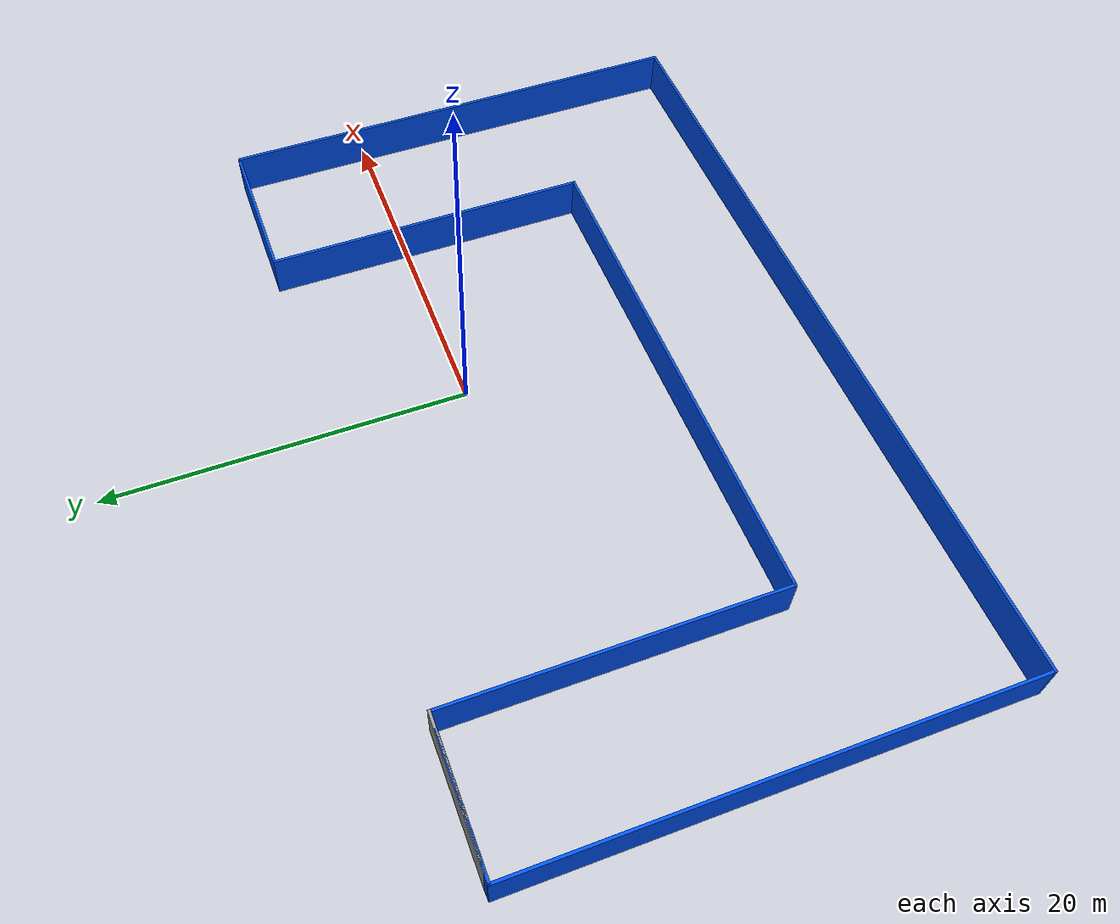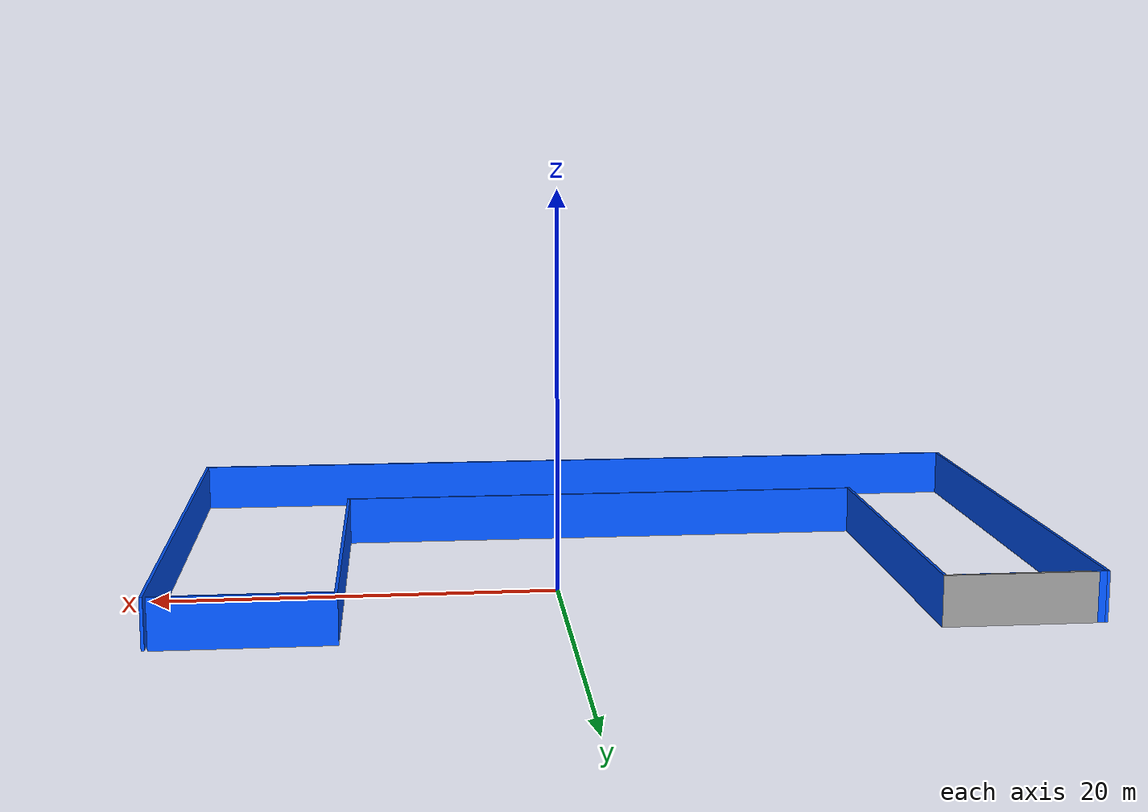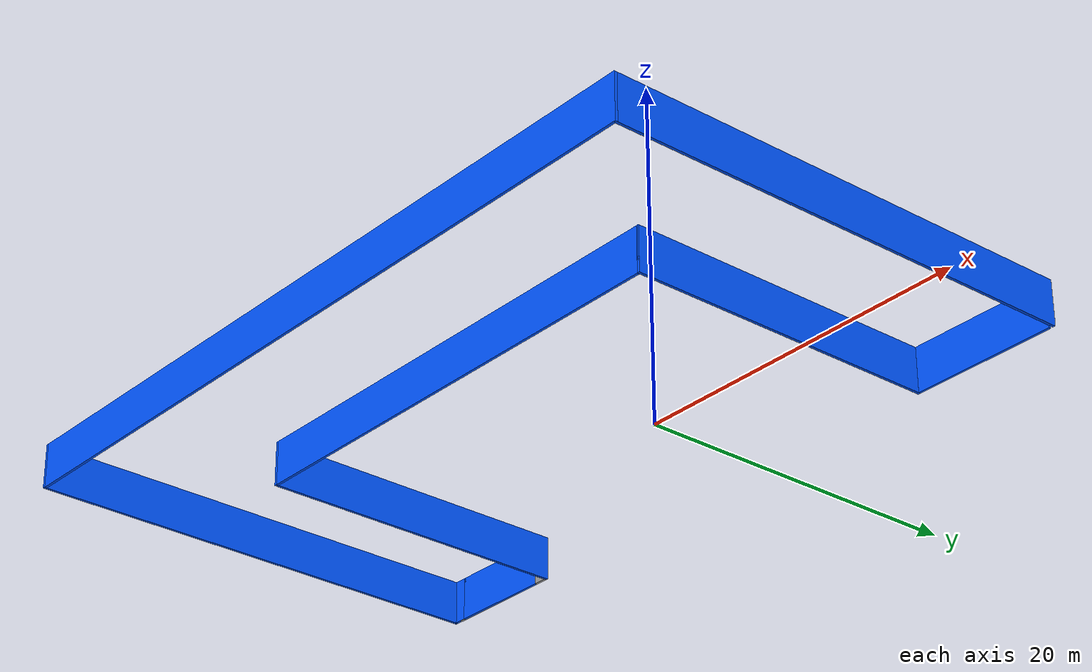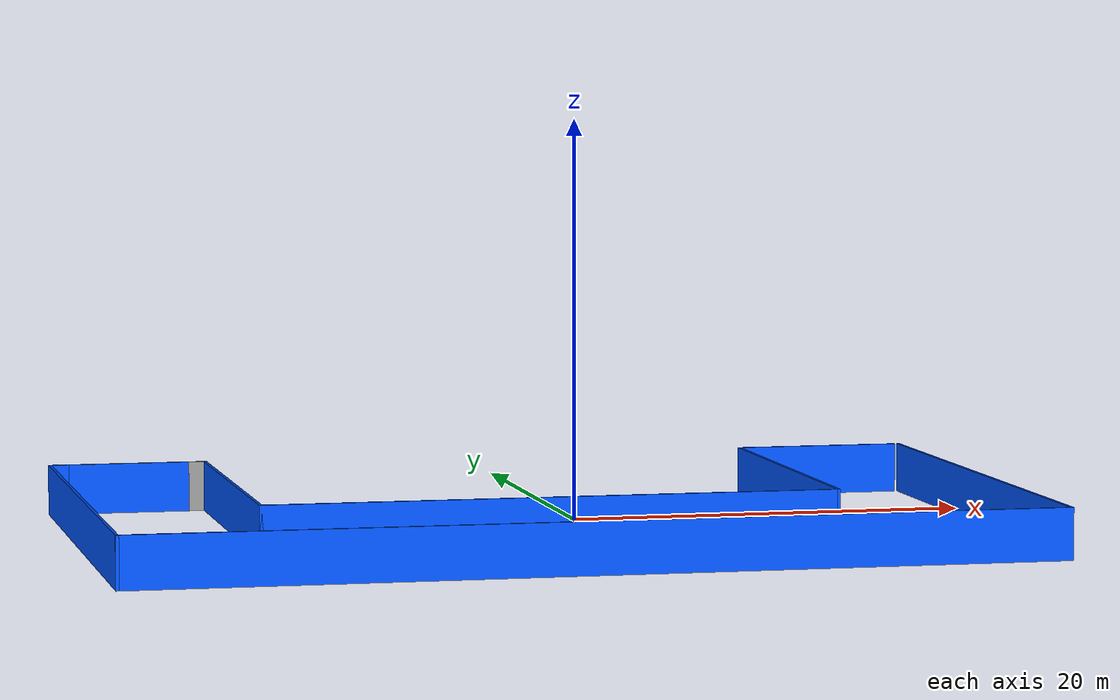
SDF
<?xml version='1.0'?>
<sdf version='1.6'>
  <model name='MyModel_1'>
    <pose frame=''>-3.0198 -5.90087 0 0 -0 0</pose>
    <link name='Wall_10'>
      <collision name='Wall_10_Collision'>
        <geometry>
          <box>
            <size>18.25 0.15 2.5</size>
          </box>
        </geometry>
        <pose frame=''>0 0 1.25 0 -0 0</pose>
      </collision>
      <visual name='Wall_10_Visual'>
        <pose frame=''>0 0 1.25 0 -0 0</pose>
        <geometry>
          <box>
            <size>18.25 0.15 2.5</size>
          </box>
        </geometry>
        <material>
          <script>
            <uri>file://media/materials/scripts/gazebo.material</uri>
            <name>Gazebo/Grey</name>
          </script>
          <ambient>0 0.333333 1 1</ambient>
        </material>
        <meta>
          <layer>0</layer>
        </meta>
      </visual>
      <pose frame=''>13.6677 4.50599 0 0 -0 1.5708</pose>
    </link>
    <link name='Wall_11'>
      <collision name='Wall_11_Collision'>
        <geometry>
          <box>
            <size>8.5 0.15 2.5</size>
          </box>
        </geometry>
        <pose frame=''>0 0 1.25 0 -0 0</pose>
      </collision>
      <visual name='Wall_11_Visual'>
        <pose frame=''>0 0 1.25 0 -0 0</pose>
        <geometry>
          <box>
            <size>8.5 0.15 2.5</size>
          </box>
        </geometry>
        <material>
          <script>
            <uri>file://media/materials/scripts/gazebo.material</uri>
            <name>Gazebo/Grey</name>
          </script>
          <ambient>0 0.333333 1 1</ambient>
        </material>
        <meta>
          <layer>0</layer>
        </meta>
      </visual>
      <pose frame=''>17.8427 13.556 0 0 -0 0</pose>
    </link>
    <link name='Wall_13'>
      <collision name='Wall_13_Collision'>
        <geometry>
          <box>
            <size>27.25 0.15 2.5</size>
          </box>
        </geometry>
        <pose frame=''>0 0 1.25 0 -0 0</pose>
      </collision>
      <visual name='Wall_13_Visual'>
        <pose frame=''>0 0 1.25 0 -0 0</pose>
        <geometry>
          <box>
            <size>27.25 0.15 2.5</size>
          </box>
        </geometry>
        <material>
          <script>
            <uri>file://media/materials/scripts/gazebo.material</uri>
            <name>Gazebo/Grey</name>
          </script>
          <ambient>0 0.333333 1 1</ambient>
        </material>
        <meta>
          <layer>0</layer>
        </meta>
      </visual>
      <pose frame=''>22.3 -0.005984 0 0 0 -1.5708</pose>
    </link>
    <link name='Wall_14'>
      <collision name='Wall_14_Collision'>
        <geometry>
          <box>
            <size>44.75 0.15 2.5</size>
          </box>
        </geometry>
        <pose frame=''>0 0 1.25 0 -0 0</pose>
      </collision>
      <visual name='Wall_14_Visual'>
        <pose frame=''>0 0 1.25 0 -0 0</pose>
        <geometry>
          <box>
            <size>44.75 0.15 2.5</size>
          </box>
        </geometry>
        <material>
          <script>
            <uri>file://media/materials/scripts/gazebo.material</uri>
            <name>Gazebo/Grey</name>
          </script>
          <ambient>0 0.333333 1 1</ambient>
        </material>
        <meta>
          <layer>0</layer>
        </meta>
      </visual>
      <pose frame=''>0 -13.556 0 0 -0 3.14159</pose>
    </link>
    <link name='Wall_15'>
      <collision name='Wall_15_Collision'>
        <geometry>
          <box>
            <size>27.25 0.15 2.5</size>
          </box>
        </geometry>
        <pose frame=''>0 0 1.25 0 -0 0</pose>
      </collision>
      <visual name='Wall_15_Visual'>
        <pose frame=''>0 0 1.25 0 -0 0</pose>
        <geometry>
          <box>
            <size>27.25 0.15 2.5</size>
          </box>
        </geometry>
        <material>
          <script>
            <uri>file://media/materials/scripts/gazebo.material</uri>
            <name>Gazebo/Grey</name>
          </script>
          <ambient>0 0.333333 1 1</ambient>
        </material>
        <meta>
          <layer>0</layer>
        </meta>
      </visual>
      <pose frame=''>-22.3 -0.005984 0 0 -0 1.5708</pose>
    </link>
    <link name='Wall_16'>
      <collision name='Wall_16_Collision'>
        <geometry>
          <box>
            <size>1 0.15 2.5</size>
          </box>
        </geometry>
        <pose frame=''>0 0 1.25 0 -0 0</pose>
      </collision>
      <visual name='Wall_16_Visual'>
        <pose frame=''>0 0 1.25 0 -0 0</pose>
        <geometry>
          <box>
            <size>1 0.15 2.5</size>
          </box>
        </geometry>
        <material>
          <script>
            <uri>file://media/materials/scripts/gazebo.material</uri>
            <name>Gazebo/Grey</name>
          </script>
          <ambient>0 0.333333 1 1</ambient>
        </material>
        <meta>
          <layer>0</layer>
        </meta>
      </visual>
      <pose frame=''>-21.875 13.544 0 0 -0 0</pose>
    </link>
    <link name='Wall_17'>
      <collision name='Wall_17_Collision'>
        <geometry>
          <box>
            <size>6.25 0.15 2.5</size>
          </box>
        </geometry>
        <pose frame=''>0 0 1.25 0 -0 0</pose>
      </collision>
      <visual name='Wall_17_Visual'>
        <pose frame=''>0 0 1.25 0 -0 0</pose>
        <geometry>
          <box>
            <size>6.25 0.15 2.5</size>
          </box>
        </geometry>
        <material>
          <script>
            <uri>file://media/materials/scripts/gazebo.material</uri>
            <name>Gazebo/Grey</name>
          </script>
          <ambient>0 0.333333 1 1</ambient>
        </material>
        <meta>
          <layer>0</layer>
        </meta>
      </visual>
      <pose frame=''>-18.4 13.544 0 0 -0 0</pose>
    </link>
    <link name='Wall_7'>
      <collision name='Wall_7_Collision'>
        <geometry>
          <box>
            <size>7.5 0.15 2.5</size>
          </box>
        </geometry>
        <pose frame=''>0 0 1.25 0 -0 0</pose>
      </collision>
      <visual name='Wall_7_Visual'>
        <pose frame=''>0 0 1.25 0 -0 0</pose>
        <geometry>
          <box>
            <size>7.5 0.15 2.5</size>
          </box>
        </geometry>
        <material>
          <script>
            <uri>file://media/materials/scripts/gazebo.material</uri>
            <name>Gazebo/Grey</name>
          </script>
          <ambient>1 1 1 1</ambient>
        </material>
        <meta>
          <layer>0</layer>
        </meta>
      </visual>
      <pose frame=''>-18.1073 13.556 0 0 -0 0</pose>
    </link>
    <link name='Wall_8'>
      <collision name='Wall_8_Collision'>
        <geometry>
          <box>
            <size>18.25 0.15 2.5</size>
          </box>
        </geometry>
        <pose frame=''>0 0 1.25 0 -0 0</pose>
      </collision>
      <visual name='Wall_8_Visual'>
        <pose frame=''>0 0 1.25 0 -0 0</pose>
        <geometry>
          <box>
            <size>18.25 0.15 2.5</size>
          </box>
        </geometry>
        <material>
          <script>
            <uri>file://media/materials/scripts/gazebo.material</uri>
            <name>Gazebo/Grey</name>
          </script>
          <ambient>0 0.333333 1 1</ambient>
        </material>
        <meta>
          <layer>0</layer>
        </meta>
      </visual>
      <pose frame=''>-14.4323 4.50599 0 0 0 -1.5708</pose>
    </link>
    <link name='Wall_9'>
      <collision name='Wall_9_Collision'>
        <geometry>
          <box>
            <size>28.25 0.15 2.5</size>
          </box>
        </geometry>
        <pose frame=''>0 0 1.25 0 -0 0</pose>
      </collision>
      <visual name='Wall_9_Visual'>
        <pose frame=''>0 0 1.25 0 -0 0</pose>
        <geometry>
          <box>
            <size>28.25 0.15 2.5</size>
          </box>
        </geometry>
        <material>
          <script>
            <uri>file://media/materials/scripts/gazebo.material</uri>
            <name>Gazebo/Grey</name>
          </script>
          <ambient>0 0.333333 1 1</ambient>
        </material>
        <meta>
          <layer>0</layer>
        </meta>
      </visual>
      <pose frame=''>-0.382278 -4.54401 0 0 -0 0</pose>
    </link>
    <static>1</static>
  </model>
</sdf>
